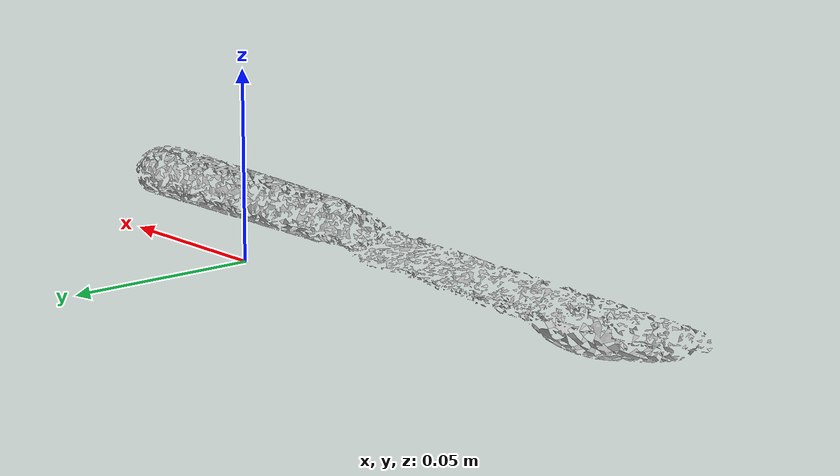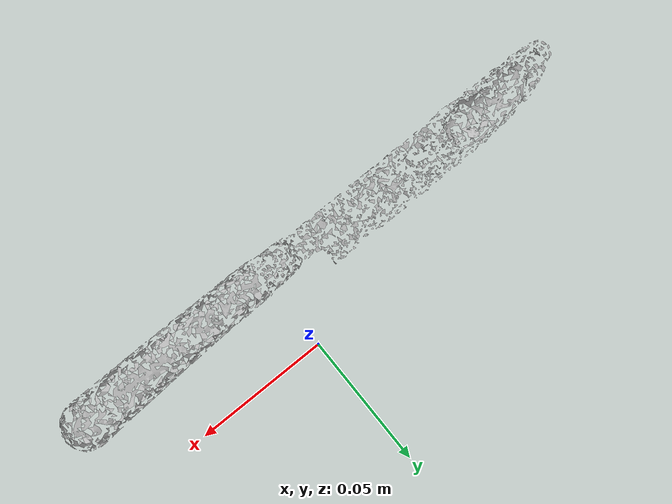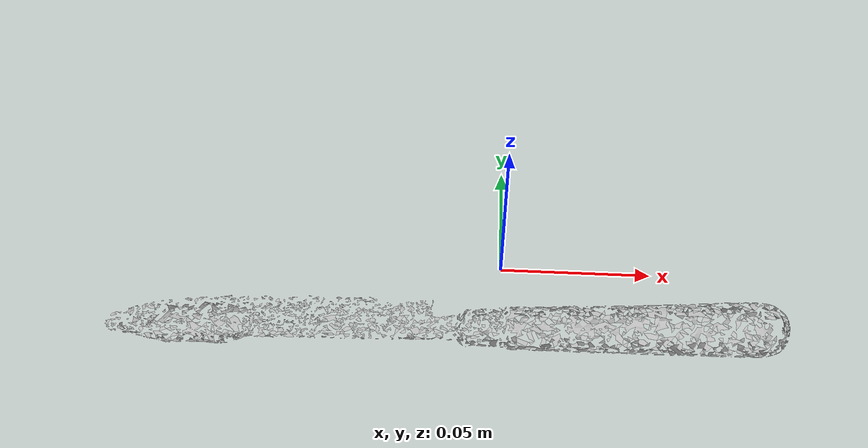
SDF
<?xml version='1.0'?>
<sdf version="1.4">
  <model name="knife">
    <static>false</static>
    <link name="link">
      <inertial>
        <pose>0.008445076147284661 -0.029092631283473027 0.005000385834128536 1.800228867938422 1.3472770212681349 -1.3518243250561393</pose>
        <mass>2.1835475900861335e-05</mass>
        <inertia>
          <ixx>8.208165528866138e-08</ixx>
          <ixy>-1.8772975746620642e-23</ixy>
          <ixz>1.2751587465994122e-24</ixz>
          <iyy>8.190889709718924e-08</iyy>
          <iyz>-2.7523177094884886e-26</iyz>
          <izz>5.818794340795607e-10</izz>
        </inertia>
      </inertial>
      <collision name="collision">
        <geometry>
          <mesh>
            <!-- Use a downsampled mesh for collisions -->
            <uri>model://032_knife/downsampled.obj</uri>
	        </mesh>
        </geometry>
        <surface>
      </surface>
      </collision>
      <visual name="visual">
        <geometry>
          <mesh>
            <uri>model://032_knife/google_16k/textured.obj</uri>
	        </mesh>
        </geometry>
        <material>
          <script>
            <uri>model://032_knife/knife.material</uri>
            <name>knife</name>
          </script>
        </material>
      </visual>
    </link>
  </model>
</sdf>
